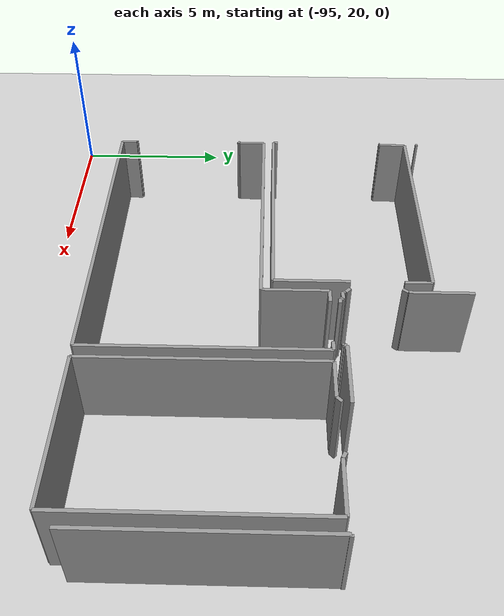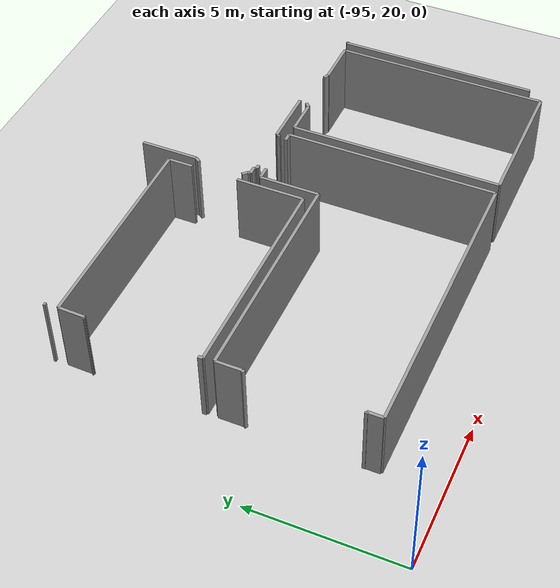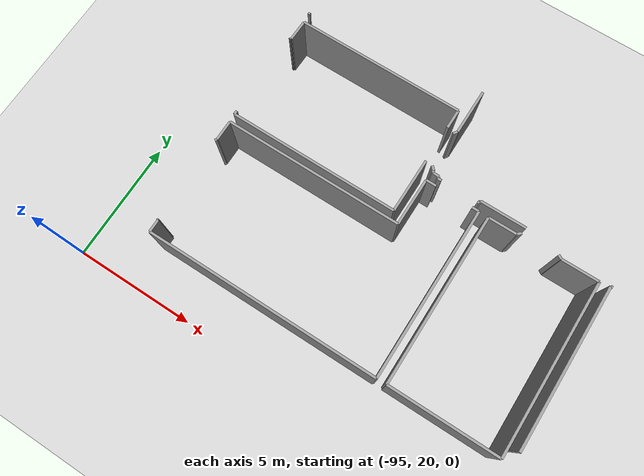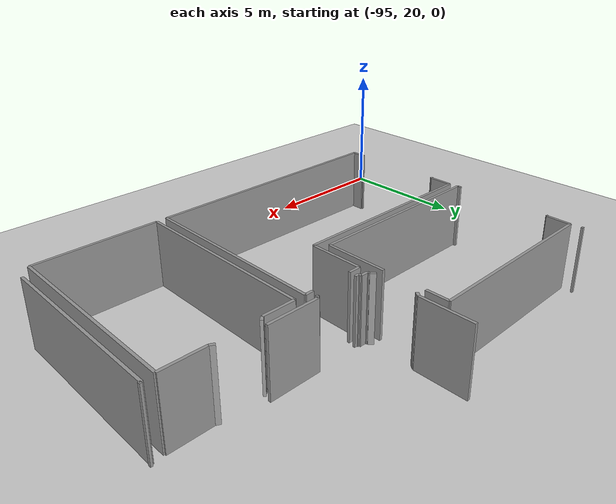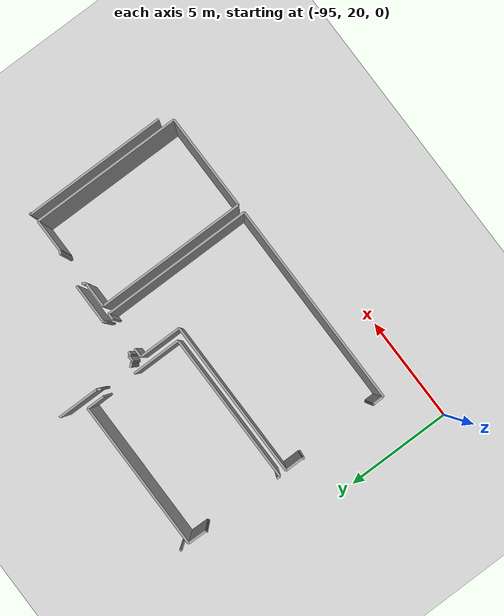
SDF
<sdf version="1.6">
 <world name="default">
  <model name="ground_plane">
   <static>1</static>
   <link name="link">
    <collision name="collision">
     <geometry><plane><normal>0 0 1</normal><size>100 100</size></plane></geometry>
     <surface><friction><ode><mu>100</mu><mu2>50</mu2></ode></friction></surface>
    </collision>
    <visual name="visual">
     <cast_shadows>0</cast_shadows>
     <geometry><plane><normal>0 0 1</normal><size>100 100</size></plane></geometry>
     <material>
      <script><uri>file://media/materials/scripts/gazebo.material</uri><name>Gazebo/Grey</name></script>
     </material>
    </visual>
   </link>
  </model>
  <model name="0510035739_A_40_1_102">
   <static>1</static>
   <link name="Wall_17">
    <collision name="Wall_17_Collision">
     <geometry><box><size>0.0766710011679 0.1 2.5</size></box></geometry>
     <pose>0.038335500584 0 1.25 0 0 0</pose>
    </collision>
    <visual name="Wall_17_Visual">
     <pose>0.038335500584 0 1.25 0 0 0</pose>
     <geometry><box><size>0.0766710011679 0.1 2.5</size></box></geometry>
     <material>
      <script><uri>file://media/materials/scripts/gazebo.material</uri><name>Gazebo/Grey</name></script>
      <ambient>1 1 1 1</ambient>
     </material>
    </visual>
    <pose>0.0376986982487 -17.5818577562 0 0 0 1.57079632679</pose>
   </link>
   <link name="Wall_19">
    <collision name="Wall_19_Collision">
     <geometry><box><size>6.88994654681 0.1 2.5</size></box></geometry>
     <pose>3.44497327341 0 1.25 0 0 0</pose>
    </collision>
    <visual name="Wall_19_Visual">
     <pose>3.44497327341 0 1.25 0 0 0</pose>
     <geometry><box><size>6.88994654681 0.1 2.5</size></box></geometry>
     <material>
      <script><uri>file://media/materials/scripts/gazebo.material</uri><name>Gazebo/Grey</name></script>
      <ambient>1 1 1 1</ambient>
     </material>
    </visual>
    <pose>0.0751426755632 -17.9667410876 0 0 0 0.0</pose>
   </link>
   <link name="Wall_20">
    <collision name="Wall_20_Collision">
     <geometry><box><size>0.811031454215 0.1 2.5</size></box></geometry>
     <pose>0.405515727107 0 1.25 0 0 0</pose>
    </collision>
    <visual name="Wall_20_Visual">
     <pose>0.405515727107 0 1.25 0 0 0</pose>
     <geometry><box><size>0.811031454215 0.1 2.5</size></box></geometry>
     <material>
      <script><uri>file://media/materials/scripts/gazebo.material</uri><name>Gazebo/Grey</name></script>
      <ambient>1 1 1 1</ambient>
     </material>
    </visual>
    <pose>6.96508922238 -17.9667410876 0 0 0 -1.57079632679</pose>
   </link>
   <link name="Wall_21">
    <collision name="Wall_21_Collision">
     <geometry><box><size>2.24995001102 0.1 2.5</size></box></geometry>
     <pose>1.12497500551 0 1.25 0 0 0</pose>
    </collision>
    <visual name="Wall_21_Visual">
     <pose>1.12497500551 0 1.25 0 0 0</pose>
     <geometry><box><size>2.24995001102 0.1 2.5</size></box></geometry>
     <material>
      <script><uri>file://media/materials/scripts/gazebo.material</uri><name>Gazebo/Grey</name></script>
      <ambient>1 1 1 1</ambient>
     </material>
    </visual>
    <pose>6.96508922238 -20.3404854726 0 0 0 -1.57079632679</pose>
   </link>
   <link name="Wall_22">
    <collision name="Wall_22_Collision">
     <geometry><box><size>6.95286261754 0.1 2.5</size></box></geometry>
     <pose>3.47643130877 0 1.25 0 0 0</pose>
    </collision>
    <visual name="Wall_22_Visual">
     <pose>3.47643130877 0 1.25 0 0 0</pose>
     <geometry><box><size>6.95286261754 0.1 2.5</size></box></geometry>
     <material>
      <script><uri>file://media/materials/scripts/gazebo.material</uri><name>Gazebo/Grey</name></script>
      <ambient>1 1 1 1</ambient>
     </material>
    </visual>
    <pose>6.96508922238 -22.5904354836 0 0 0 3.14159265359</pose>
   </link>
   <link name="Wall_23">
    <collision name="Wall_23_Collision">
     <geometry><box><size>0.146973978983 0.1 2.5</size></box></geometry>
     <pose>0.0734869894915 0 1.25 0 0 0</pose>
    </collision>
    <visual name="Wall_23_Visual">
     <pose>0.0734869894915 0 1.25 0 0 0</pose>
     <geometry><box><size>0.146973978983 0.1 2.5</size></box></geometry>
     <material>
      <script><uri>file://media/materials/scripts/gazebo.material</uri><name>Gazebo/Grey</name></script>
      <ambient>1 1 1 1</ambient>
     </material>
    </visual>
    <pose>0.0122266048374 -22.5904354836 0 0 0 1.57079632679</pose>
   </link>
   <link name="Wall_24">
    <collision name="Wall_24_Collision">
     <geometry><box><size>0.0308212330276 0.1 2.5</size></box></geometry>
     <pose>0.0154106165138 0 1.25 0 0 0</pose>
    </collision>
    <visual name="Wall_24_Visual">
     <pose>0.0154106165138 0 1.25 0 0 0</pose>
     <geometry><box><size>0.0308212330276 0.1 2.5</size></box></geometry>
     <material>
      <script><uri>file://media/materials/scripts/gazebo.material</uri><name>Gazebo/Grey</name></script>
      <ambient>1 1 1 1</ambient>
     </material>
    </visual>
    <pose>0.0122266048374 -18.8651418222 0 0 0 1.57079632679</pose>
   </link>
   <link name="Wall_25">
    <collision name="Wall_25_Collision">
     <geometry><box><size>0.0427931169309 0.1 2.5</size></box></geometry>
     <pose>0.0213965584655 0 1.25 0 0 0</pose>
    </collision>
    <visual name="Wall_25_Visual">
     <pose>0.0213965584655 0 1.25 0 0 0</pose>
     <geometry><box><size>0.0427931169309 0.1 2.5</size></box></geometry>
     <material>
      <script><uri>file://media/materials/scripts/gazebo.material</uri><name>Gazebo/Grey</name></script>
      <ambient>1 1 1 1</ambient>
     </material>
    </visual>
    <pose>0.0122266048374 -18.8343205892 0 0 0 0.0</pose>
   </link>
   <link name="Wall_26">
    <collision name="Wall_26_Collision">
     <geometry><box><size>0.867812839755 0.1 2.5</size></box></geometry>
     <pose>0.433906419878 0 1.25 0 0 0</pose>
    </collision>
    <visual name="Wall_26_Visual">
     <pose>0.433906419878 0 1.25 0 0 0</pose>
     <geometry><box><size>0.867812839755 0.1 2.5</size></box></geometry>
     <material>
      <script><uri>file://media/materials/scripts/gazebo.material</uri><name>Gazebo/Grey</name></script>
      <ambient>1 1 1 1</ambient>
     </material>
    </visual>
    <pose>0.0550197217683 -18.8343205892 0 0 0 1.54760612192</pose>
   </link>
   <link name="Wall_27">
    <collision name="Wall_27_Collision">
     <geometry><box><size>0.50663993795 0.1 2.5</size></box></geometry>
     <pose>0.253319968975 0 1.25 0 0 0</pose>
    </collision>
    <visual name="Wall_27_Visual">
     <pose>0.253319968975 0 1.25 0 0 0</pose>
     <geometry><box><size>0.50663993795 0.1 2.5</size></box></geometry>
     <material>
      <script><uri>file://media/materials/scripts/gazebo.material</uri><name>Gazebo/Grey</name></script>
      <ambient>1 1 1 1</ambient>
     </material>
    </visual>
    <pose>0.0634255125941 -27.947216728 0 0 0 1.57079632679</pose>
   </link>
   <link name="Wall_28">
    <collision name="Wall_28_Collision">
     <geometry><box><size>0.0634255125941 0.1 2.5</size></box></geometry>
     <pose>0.031712756297 0 1.25 0 0 0</pose>
    </collision>
    <visual name="Wall_28_Visual">
     <pose>0.031712756297 0 1.25 0 0 0</pose>
     <geometry><box><size>0.0634255125941 0.1 2.5</size></box></geometry>
     <material>
      <script><uri>file://media/materials/scripts/gazebo.material</uri><name>Gazebo/Grey</name></script>
      <ambient>1 1 1 1</ambient>
     </material>
    </visual>
    <pose>0.0634255125941 -27.4405767901 0 0 0 3.14159265359</pose>
   </link>
   <link name="Wall_29">
    <collision name="Wall_29_Collision">
     <geometry><box><size>0.0853980185984 0.1 2.5</size></box></geometry>
     <pose>0.0426990092992 0 1.25 0 0 0</pose>
    </collision>
    <visual name="Wall_29_Visual">
     <pose>0.0426990092992 0 1.25 0 0 0</pose>
     <geometry><box><size>0.0853980185984 0.1 2.5</size></box></geometry>
     <material>
      <script><uri>file://media/materials/scripts/gazebo.material</uri><name>Gazebo/Grey</name></script>
      <ambient>1 1 1 1</ambient>
     </material>
    </visual>
    <pose>0.0 -23.8411152701 0 0 0 0.946385977168</pose>
   </link>
   <link name="Wall_30">
    <collision name="Wall_30_Collision">
     <geometry><box><size>0.837267710428 0.1 2.5</size></box></geometry>
     <pose>0.418633855214 0 1.25 0 0 0</pose>
    </collision>
    <visual name="Wall_30_Visual">
     <pose>0.418633855214 0 1.25 0 0 0</pose>
     <geometry><box><size>0.837267710428 0.1 2.5</size></box></geometry>
     <material>
      <script><uri>file://media/materials/scripts/gazebo.material</uri><name>Gazebo/Grey</name></script>
      <ambient>1 1 1 1</ambient>
     </material>
    </visual>
    <pose>0.0499253030861 -23.7718311761 0 0 0 1.57079632679</pose>
   </link>
   <link name="Wall_31">
    <collision name="Wall_31_Collision">
     <geometry><box><size>7.29826420419 0.1 2.5</size></box></geometry>
     <pose>3.6491321021 0 1.25 0 0 0</pose>
    </collision>
    <visual name="Wall_31_Visual">
     <pose>3.6491321021 0 1.25 0 0 0</pose>
     <geometry><box><size>7.29826420419 0.1 2.5</size></box></geometry>
     <material>
      <script><uri>file://media/materials/scripts/gazebo.material</uri><name>Gazebo/Grey</name></script>
      <ambient>1 1 1 1</ambient>
     </material>
    </visual>
    <pose>0.0499253030861 -22.9345634656 0 0 0 0.0</pose>
   </link>
   <link name="Wall_32">
    <collision name="Wall_32_Collision">
     <geometry><box><size>1.96695505322 0.1 2.5</size></box></geometry>
     <pose>0.983477526609 0 1.25 0 0 0</pose>
    </collision>
    <visual name="Wall_32_Visual">
     <pose>0.983477526609 0 1.25 0 0 0</pose>
     <geometry><box><size>1.96695505322 0.1 2.5</size></box></geometry>
     <material>
      <script><uri>file://media/materials/scripts/gazebo.material</uri><name>Gazebo/Grey</name></script>
      <ambient>1 1 1 1</ambient>
     </material>
    </visual>
    <pose>7.34818950728 -22.9345634656 0 0 0 1.57079632679</pose>
   </link>
   <link name="Wall_33">
    <collision name="Wall_33_Collision">
     <geometry><box><size>0.424619797166 0.1 2.5</size></box></geometry>
     <pose>0.212309898583 0 1.25 0 0 0</pose>
    </collision>
    <visual name="Wall_33_Visual">
     <pose>0.212309898583 0 1.25 0 0 0</pose>
     <geometry><box><size>0.424619797166 0.1 2.5</size></box></geometry>
     <material>
      <script><uri>file://media/materials/scripts/gazebo.material</uri><name>Gazebo/Grey</name></script>
      <ambient>1 1 1 1</ambient>
     </material>
    </visual>
    <pose>7.34818950728 -20.9676084124 0 0 0 0.0</pose>
   </link>
   <link name="Wall_34">
    <collision name="Wall_34_Collision">
     <geometry><box><size>0.289617702086 0.1 2.5</size></box></geometry>
     <pose>0.144808851043 0 1.25 0 0 0</pose>
    </collision>
    <visual name="Wall_34_Visual">
     <pose>0.144808851043 0 1.25 0 0 0</pose>
     <geometry><box><size>0.289617702086 0.1 2.5</size></box></geometry>
     <material>
      <script><uri>file://media/materials/scripts/gazebo.material</uri><name>Gazebo/Grey</name></script>
      <ambient>1 1 1 1</ambient>
     </material>
    </visual>
    <pose>9.26776646675 -20.9676084124 0 0 0 0.0</pose>
   </link>
   <link name="Wall_35">
    <collision name="Wall_35_Collision">
     <geometry><box><size>6.97782526908 0.1 2.5</size></box></geometry>
     <pose>3.48891263454 0 1.25 0 0 0</pose>
    </collision>
    <visual name="Wall_35_Visual">
     <pose>3.48891263454 0 1.25 0 0 0</pose>
     <geometry><box><size>6.97782526908 0.1 2.5</size></box></geometry>
     <material>
      <script><uri>file://media/materials/scripts/gazebo.material</uri><name>Gazebo/Grey</name></script>
      <ambient>1 1 1 1</ambient>
     </material>
    </visual>
    <pose>9.55738416884 -20.9676084124 0 0 0 -1.57079632679</pose>
   </link>
   <link name="Wall_36">
    <collision name="Wall_36_Collision">
     <geometry><box><size>9.49395882368 0.1 2.5</size></box></geometry>
     <pose>4.74697941184 0 1.25 0 0 0</pose>
    </collision>
    <visual name="Wall_36_Visual">
     <pose>4.74697941184 0 1.25 0 0 0</pose>
     <geometry><box><size>9.49395882368 0.1 2.5</size></box></geometry>
     <material>
      <script><uri>file://media/materials/scripts/gazebo.material</uri><name>Gazebo/Grey</name></script>
      <ambient>1 1 1 1</ambient>
     </material>
    </visual>
    <pose>9.55738416884 -27.9454336815 0 0 0 -3.14140484505</pose>
   </link>
   <link name="Wall_37">
    <collision name="Wall_37_Collision">
     <geometry><box><size>6.9526078966 0.1 2.5</size></box></geometry>
     <pose>3.4763039483 0 1.25 0 0 0</pose>
    </collision>
    <visual name="Wall_37_Visual">
     <pose>3.4763039483 0 1.25 0 0 0</pose>
     <geometry><box><size>6.9526078966 0.1 2.5</size></box></geometry>
     <material>
      <script><uri>file://media/materials/scripts/gazebo.material</uri><name>Gazebo/Grey</name></script>
      <ambient>1 1 1 1</ambient>
     </material>
    </visual>
    <pose>9.94863552364 -27.9334617976 0 0 0 1.57079632679</pose>
   </link>
   <link name="Wall_38">
    <collision name="Wall_38_Collision">
     <geometry><box><size>1.15286694779 0.1 2.5</size></box></geometry>
     <pose>0.576433473897 0 1.25 0 0 0</pose>
    </collision>
    <visual name="Wall_38_Visual">
     <pose>0.576433473897 0 1.25 0 0 0</pose>
     <geometry><box><size>1.15286694779 0.1 2.5</size></box></geometry>
     <material>
      <script><uri>file://media/materials/scripts/gazebo.material</uri><name>Gazebo/Grey</name></script>
      <ambient>1 1 1 1</ambient>
     </material>
    </visual>
    <pose>9.94863552364 -20.980853901 0 0 0 0.0</pose>
   </link>
   <link name="Wall_39">
    <collision name="Wall_39_Collision">
     <geometry><box><size>0.186959266014 0.1 2.5</size></box></geometry>
     <pose>0.0934796330072 0 1.25 0 0 0</pose>
    </collision>
    <visual name="Wall_39_Visual">
     <pose>0.0934796330072 0 1.25 0 0 0</pose>
     <geometry><box><size>0.186959266014 0.1 2.5</size></box></geometry>
     <material>
      <script><uri>file://media/materials/scripts/gazebo.material</uri><name>Gazebo/Grey</name></script>
      <ambient>1 1 1 1</ambient>
     </material>
    </visual>
    <pose>11.1015024714 -20.980853901 0 0 0 0.785398163397</pose>
   </link>
   <link name="Wall_40">
    <collision name="Wall_40_Collision">
     <geometry><box><size>0.17523856145 0.1 2.5</size></box></geometry>
     <pose>0.0876192807252 0 1.25 0 0 0</pose>
    </collision>
    <visual name="Wall_40_Visual">
     <pose>0.0876192807252 0 1.25 0 0 0</pose>
     <geometry><box><size>0.17523856145 0.1 2.5</size></box></geometry>
     <material>
      <script><uri>file://media/materials/scripts/gazebo.material</uri><name>Gazebo/Grey</name></script>
      <ambient>1 1 1 1</ambient>
     </material>
    </visual>
    <pose>12.7064990773 -20.8486537362 0 0 0 -0.505263125965</pose>
   </link>
   <link name="Wall_41">
    <collision name="Wall_41_Collision">
     <geometry><box><size>1.50336295313 0.1 2.5</size></box></geometry>
     <pose>0.751681476566 0 1.25 0 0 0</pose>
    </collision>
    <visual name="Wall_41_Visual">
     <pose>0.751681476566 0 1.25 0 0 0</pose>
     <geometry><box><size>1.50336295313 0.1 2.5</size></box></geometry>
     <material>
      <script><uri>file://media/materials/scripts/gazebo.material</uri><name>Gazebo/Grey</name></script>
      <ambient>1 1 1 1</ambient>
     </material>
    </visual>
    <pose>12.8598410796 -20.9334758072 0 0 0 0.0</pose>
   </link>
   <link name="Wall_42">
    <collision name="Wall_42_Collision">
     <geometry><box><size>6.99132547859 0.1 2.5</size></box></geometry>
     <pose>3.49566273929 0 1.25 0 0 0</pose>
    </collision>
    <visual name="Wall_42_Visual">
     <pose>3.49566273929 0 1.25 0 0 0</pose>
     <geometry><box><size>6.99132547859 0.1 2.5</size></box></geometry>
     <material>
      <script><uri>file://media/materials/scripts/gazebo.material</uri><name>Gazebo/Grey</name></script>
      <ambient>1 1 1 1</ambient>
     </material>
    </visual>
    <pose>14.3632040327 -20.9334758072 0 0 0 -1.57079632679</pose>
   </link>
   <link name="Wall_43">
    <collision name="Wall_43_Collision">
     <geometry><box><size>4.4145770042 0.1 2.5</size></box></geometry>
     <pose>2.2072885021 0 1.25 0 0 0</pose>
    </collision>
    <visual name="Wall_43_Visual">
     <pose>2.2072885021 0 1.25 0 0 0</pose>
     <geometry><box><size>4.4145770042 0.1 2.5</size></box></geometry>
     <material>
      <script><uri>file://media/materials/scripts/gazebo.material</uri><name>Gazebo/Grey</name></script>
      <ambient>1 1 1 1</ambient>
     </material>
    </visual>
    <pose>14.3632040327 -27.9248012858 0 0 0 -3.13963085356</pose>
   </link>
   <link name="Wall_44">
    <collision name="Wall_44_Collision">
     <geometry><box><size>6.57052649543 0.1 2.5</size></box></geometry>
     <pose>3.28526324772 0 1.25 0 0 0</pose>
    </collision>
    <visual name="Wall_44_Visual">
     <pose>3.28526324772 0 1.25 0 0 0</pose>
     <geometry><box><size>6.57052649543 0.1 2.5</size></box></geometry>
     <material>
      <script><uri>file://media/materials/scripts/gazebo.material</uri><name>Gazebo/Grey</name></script>
      <ambient>1 1 1 1</ambient>
     </material>
    </visual>
    <pose>14.7687197598 -27.4342087667 0 0 0 1.57079632679</pose>
   </link>
   <link name="Wall_45">
    <collision name="Wall_45_Collision">
     <geometry><box><size>0.074633233695 0.1 2.5</size></box></geometry>
     <pose>0.0373166168475 0 1.25 0 0 0</pose>
    </collision>
    <visual name="Wall_45_Visual">
     <pose>0.0373166168475 0 1.25 0 0 0</pose>
     <geometry><box><size>0.074633233695 0.1 2.5</size></box></geometry>
     <material>
      <script><uri>file://media/materials/scripts/gazebo.material</uri><name>Gazebo/Grey</name></script>
      <ambient>1 1 1 1</ambient>
     </material>
    </visual>
    <pose>14.7687197598 -20.8636822713 0 0 0 0.0</pose>
   </link>
   <link name="Wall_134">
    <collision name="Wall_134_Collision">
     <geometry><box><size>1.87245358666 0.1 2.5</size></box></geometry>
     <pose>0.936226793331 0 1.25 0 0 0</pose>
    </collision>
    <visual name="Wall_134_Visual">
     <pose>0.936226793331 0 1.25 0 0 0</pose>
     <geometry><box><size>1.87245358666 0.1 2.5</size></box></geometry>
     <material>
      <script><uri>file://media/materials/scripts/gazebo.material</uri><name>Gazebo/Grey</name></script>
      <ambient>1 1 1 1</ambient>
     </material>
    </visual>
    <pose>11.273439102 -20.6010649882 0 0 0 3.14159265359</pose>
   </link>
   <link name="Wall_135">
    <collision name="Wall_135_Collision">
     <geometry><box><size>0.0876240013347 0.1 2.5</size></box></geometry>
     <pose>0.0438120006674 0 1.25 0 0 0</pose>
    </collision>
    <visual name="Wall_135_Visual">
     <pose>0.0438120006674 0 1.25 0 0 0</pose>
     <geometry><box><size>0.0876240013347 0.1 2.5</size></box></geometry>
     <material>
      <script><uri>file://media/materials/scripts/gazebo.material</uri><name>Gazebo/Grey</name></script>
      <ambient>1 1 1 1</ambient>
     </material>
    </visual>
    <pose>9.40098551529 -20.6010649882 0 0 0 -1.57079632679</pose>
   </link>
   <link name="Wall_136">
    <collision name="Wall_136_Collision">
     <geometry><box><size>0.0766710011679 0.1 2.5</size></box></geometry>
     <pose>0.038335500584 0 1.25 0 0 0</pose>
    </collision>
    <visual name="Wall_136_Visual">
     <pose>0.038335500584 0 1.25 0 0 0</pose>
     <geometry><box><size>0.0766710011679 0.1 2.5</size></box></geometry>
     <material>
      <script><uri>file://media/materials/scripts/gazebo.material</uri><name>Gazebo/Grey</name></script>
      <ambient>1 1 1 1</ambient>
     </material>
    </visual>
    <pose>9.40098551529 -20.6886889896 0 0 0 3.14159265359</pose>
   </link>
   <link name="Wall_137">
    <collision name="Wall_137_Collision">
     <geometry><box><size>0.152068397665 0.1 2.5</size></box></geometry>
     <pose>0.0760341988326 0 1.25 0 0 0</pose>
    </collision>
    <visual name="Wall_137_Visual">
     <pose>0.0760341988326 0 1.25 0 0 0</pose>
     <geometry><box><size>0.152068397665 0.1 2.5</size></box></geometry>
     <material>
      <script><uri>file://media/materials/scripts/gazebo.material</uri><name>Gazebo/Grey</name></script>
      <ambient>1 1 1 1</ambient>
     </material>
    </visual>
    <pose>7.82451765407 -20.6886889896 0 0 0 3.14159265359</pose>
   </link>
   <link name="Wall_138">
    <collision name="Wall_138_Collision">
     <geometry><box><size>0.0914448153464 0.1 2.5</size></box></geometry>
     <pose>0.0457224076732 0 1.25 0 0 0</pose>
    </collision>
    <visual name="Wall_138_Visual">
     <pose>0.0457224076732 0 1.25 0 0 0</pose>
     <geometry><box><size>0.0914448153464 0.1 2.5</size></box></geometry>
     <material>
      <script><uri>file://media/materials/scripts/gazebo.material</uri><name>Gazebo/Grey</name></script>
      <ambient>1 1 1 1</ambient>
     </material>
    </visual>
    <pose>7.67244925641 -20.6886889896 0 0 0 1.57079632679</pose>
   </link>
   <link name="Wall_139">
    <collision name="Wall_139_Collision">
     <geometry><box><size>0.275098608842 0.1 2.5</size></box></geometry>
     <pose>0.137549304421 0 1.25 0 0 0</pose>
    </collision>
    <visual name="Wall_139_Visual">
     <pose>0.137549304421 0 1.25 0 0 0</pose>
     <geometry><box><size>0.275098608842 0.1 2.5</size></box></geometry>
     <material>
      <script><uri>file://media/materials/scripts/gazebo.material</uri><name>Gazebo/Grey</name></script>
      <ambient>1 1 1 1</ambient>
     </material>
    </visual>
    <pose>7.67244925641 -20.5972441742 0 0 0 3.14159265359</pose>
   </link>
   <link name="Wall_140">
    <collision name="Wall_140_Collision">
     <geometry><box><size>0.0868598385324 0.1 2.5</size></box></geometry>
     <pose>0.0434299192662 0 1.25 0 0 0</pose>
    </collision>
    <visual name="Wall_140_Visual">
     <pose>0.0434299192662 0 1.25 0 0 0</pose>
     <geometry><box><size>0.0868598385324 0.1 2.5</size></box></geometry>
     <material>
      <script><uri>file://media/materials/scripts/gazebo.material</uri><name>Gazebo/Grey</name></script>
      <ambient>1 1 1 1</ambient>
     </material>
    </visual>
    <pose>7.39735064756 -20.5972441742 0 0 0 1.57079632679</pose>
   </link>
   <link name="Wall_141">
    <collision name="Wall_141_Collision">
     <geometry><box><size>0.199631021793 0.1 2.5</size></box></geometry>
     <pose>0.0998155108963 0 1.25 0 0 0</pose>
    </collision>
    <visual name="Wall_141_Visual">
     <pose>0.0998155108963 0 1.25 0 0 0</pose>
     <geometry><box><size>0.199631021793 0.1 2.5</size></box></geometry>
     <material>
      <script><uri>file://media/materials/scripts/gazebo.material</uri><name>Gazebo/Grey</name></script>
      <ambient>1 1 1 1</ambient>
     </material>
    </visual>
    <pose>7.39735064756 -20.5103843357 0 0 0 2.38145987098</pose>
   </link>
   <link name="Wall_142">
    <collision name="Wall_142_Collision">
     <geometry><box><size>0.192148918567 0.1 2.5</size></box></geometry>
     <pose>0.0960744592836 0 1.25 0 0 0</pose>
    </collision>
    <visual name="Wall_142_Visual">
     <pose>0.0960744592836 0 1.25 0 0 0</pose>
     <geometry><box><size>0.192148918567 0.1 2.5</size></box></geometry>
     <material>
      <script><uri>file://media/materials/scripts/gazebo.material</uri><name>Gazebo/Grey</name></script>
      <ambient>1 1 1 1</ambient>
     </material>
    </visual>
    <pose>7.25266915699 -18.8722740084 0 0 0 0.957789740817</pose>
   </link>
   <link name="Wall_143">
    <collision name="Wall_143_Collision">
     <geometry><box><size>1.88595379617 0.1 2.5</size></box></geometry>
     <pose>0.942976898085 0 1.25 0 0 0</pose>
    </collision>
    <visual name="Wall_143_Visual">
     <pose>0.942976898085 0 1.25 0 0 0</pose>
     <geometry><box><size>1.88595379617 0.1 2.5</size></box></geometry>
     <material>
      <script><uri>file://media/materials/scripts/gazebo.material</uri><name>Gazebo/Grey</name></script>
      <ambient>1 1 1 1</ambient>
     </material>
    </visual>
    <pose>7.36321804239 -18.7151111921 0 0 0 1.57079632679</pose>
   </link>
   <pose>-92.5 49.8157534709 0 0 0 0</pose>
  </model>
 </world>
</sdf>
